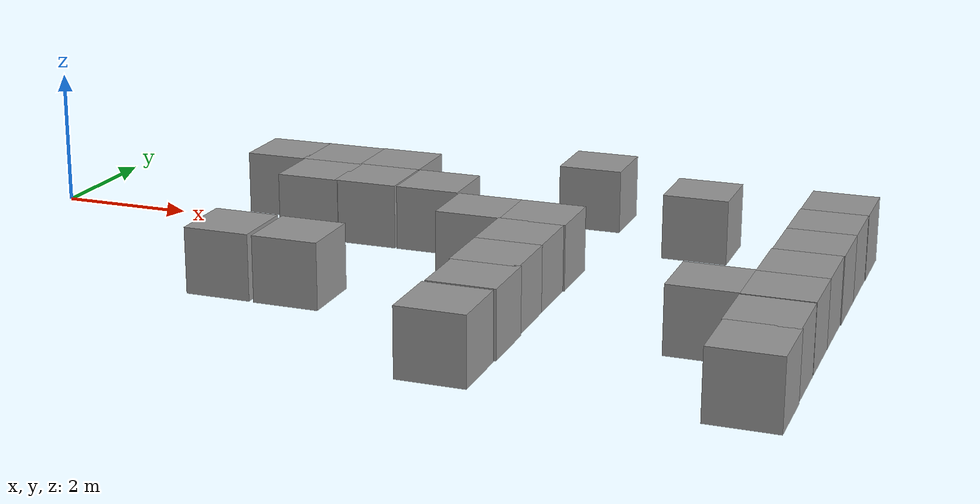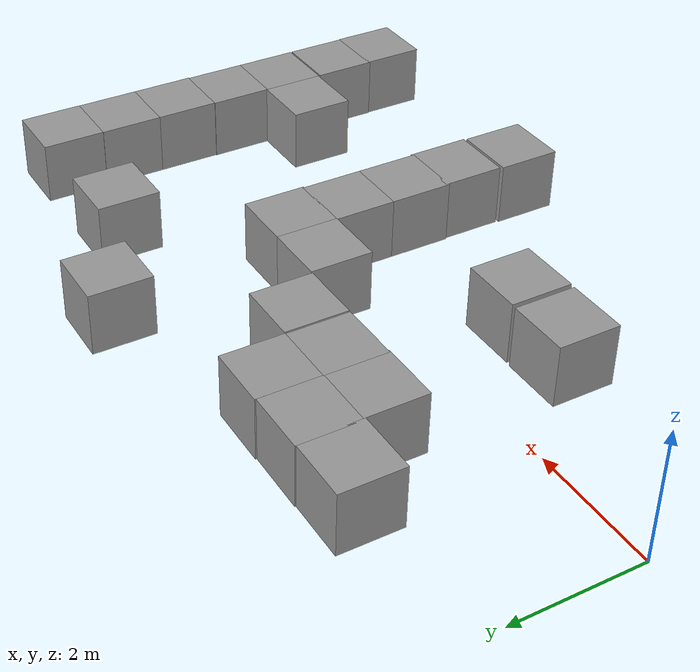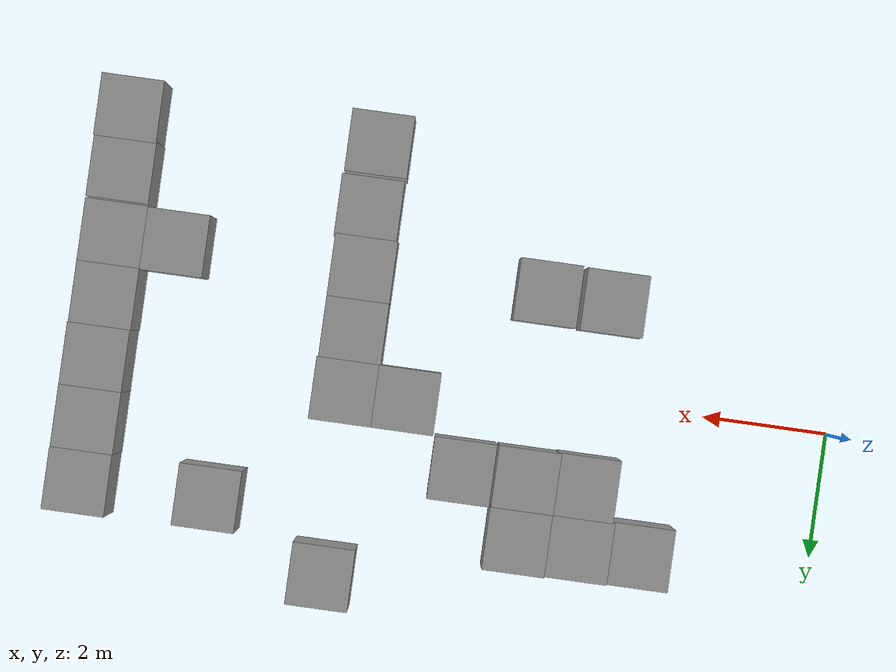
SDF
<sdf version="1.7">
 <model name="maze2.1">
  <link name="link_15">
   <inertial>
    <mass>1</mass>
    <inertia>
     <ixx>0.166667</ixx>
     <ixy>0</ixy>
     <ixz>0</ixz>
     <iyy>0.166667</iyy>
     <iyz>0</iyz>
     <izz>0.166667</izz>
    </inertia>
   </inertial>
   <pose>4.70076 2.36358 0 0 -0 0</pose>
   <visual name="visual">
    <geometry><box><size>1 1 1</size></box></geometry>
    <material>
     <lighting>1</lighting>
     <script><uri>file://media/materials/scripts/gazebo.material</uri><name>Gazebo/Grey</name></script>
     <shader type="pixel"/>
    </material>
   </visual>
   <collision name="collision">
    <geometry><box><size>1 1 1</size></box></geometry>
    <surface>
     <friction>
      <ode><mu>1</mu><mu2>1</mu2><fdir1>0 0 0</fdir1><slip1>0</slip1><slip2>0</slip2></ode>
      <torsional>
       <coefficient>1</coefficient>
       <patch_radius>0</patch_radius>
       <surface_radius>0</surface_radius>
       <use_patch_radius>1</use_patch_radius>
       <ode><slip>0</slip></ode>
      </torsional>
     </friction>
     <bounce><restitution_coefficient>0</restitution_coefficient><threshold>1e+06</threshold></bounce>
     <contact>
      <collide_without_contact>0</collide_without_contact>
      <collide_without_contact_bitmask>1</collide_without_contact_bitmask>
      <collide_bitmask>1</collide_bitmask>
      <ode>
       <soft_cfm>0</soft_cfm>
       <soft_erp>0.2</soft_erp>
       <kp>1e+13</kp>
       <kd>1</kd>
       <max_vel>0.01</max_vel>
       <min_depth>0</min_depth>
      </ode>
      <bullet>
       <split_impulse>1</split_impulse>
       <split_impulse_penetration_threshold>-0.01</split_impulse_penetration_threshold>
       <soft_cfm>0</soft_cfm>
       <soft_erp>0.2</soft_erp>
       <kp>1e+13</kp>
       <kd>1</kd>
      </bullet>
     </contact>
    </surface>
   </collision>
  </link>
  <link name="link_1_clone_133">
   <inertial>
    <mass>1</mass>
    <inertia>
     <ixx>0.166667</ixx>
     <ixy>0</ixy>
     <ixz>0</ixz>
     <iyy>0.166667</iyy>
     <iyz>0</iyz>
     <izz>0.166667</izz>
    </inertia>
   </inertial>
   <pose>7.75382 0.374651 0 0 -0 0</pose>
   <visual name="visual">
    <geometry><box><size>1 1 1</size></box></geometry>
    <material>
     <lighting>1</lighting>
     <script><uri>file://media/materials/scripts/gazebo.material</uri><name>Gazebo/Grey</name></script>
     <shader type="pixel"><normal_map>__default__</normal_map></shader>
     <ambient>0.3 0.3 0.3 1</ambient>
     <diffuse>0.7 0.7 0.7 1</diffuse>
     <specular>0.01 0.01 0.01 1</specular>
     <emissive>0 0 0 1</emissive>
    </material>
   </visual>
   <collision name="collision">
    <geometry><box><size>1 1 1</size></box></geometry>
    <surface>
     <friction>
      <ode><mu>1</mu><mu2>1</mu2><fdir1>0 0 0</fdir1><slip1>0</slip1><slip2>0</slip2></ode>
      <torsional>
       <coefficient>1</coefficient>
       <patch_radius>0</patch_radius>
       <surface_radius>0</surface_radius>
       <use_patch_radius>1</use_patch_radius>
       <ode><slip>0</slip></ode>
      </torsional>
     </friction>
     <bounce><restitution_coefficient>0</restitution_coefficient><threshold>1e+06</threshold></bounce>
     <contact>
      <collide_without_contact>0</collide_without_contact>
      <collide_without_contact_bitmask>1</collide_without_contact_bitmask>
      <collide_bitmask>1</collide_bitmask>
      <ode>
       <soft_cfm>0</soft_cfm>
       <soft_erp>0.2</soft_erp>
       <kp>1e+13</kp>
       <kd>1</kd>
       <max_vel>0.01</max_vel>
       <min_depth>0</min_depth>
      </ode>
      <bullet>
       <split_impulse>1</split_impulse>
       <split_impulse_penetration_threshold>-0.01</split_impulse_penetration_threshold>
       <soft_cfm>0</soft_cfm>
       <soft_erp>0.2</soft_erp>
       <kp>1e+13</kp>
       <kd>1</kd>
      </bullet>
     </contact>
    </surface>
   </collision>
  </link>
  <link name="link_1_clone_134">
   <inertial>
    <mass>1</mass>
    <inertia>
     <ixx>0.166667</ixx>
     <ixy>0</ixy>
     <ixz>0</ixz>
     <iyy>0.166667</iyy>
     <iyz>0</iyz>
     <izz>0.166667</izz>
    </inertia>
   </inertial>
   <pose>6.75382 0.374651 0 0 -0 0</pose>
   <visual name="visual">
    <geometry><box><size>1 1 1</size></box></geometry>
    <material>
     <lighting>1</lighting>
     <script><uri>file://media/materials/scripts/gazebo.material</uri><name>Gazebo/Grey</name></script>
     <shader type="pixel"><normal_map>__default__</normal_map></shader>
     <ambient>0.3 0.3 0.3 1</ambient>
     <diffuse>0.7 0.7 0.7 1</diffuse>
     <specular>0.01 0.01 0.01 1</specular>
     <emissive>0 0 0 1</emissive>
    </material>
   </visual>
   <collision name="collision">
    <geometry><box><size>1 1 1</size></box></geometry>
    <surface>
     <friction>
      <ode><mu>1</mu><mu2>1</mu2><fdir1>0 0 0</fdir1><slip1>0</slip1><slip2>0</slip2></ode>
      <torsional>
       <coefficient>1</coefficient>
       <patch_radius>0</patch_radius>
       <surface_radius>0</surface_radius>
       <use_patch_radius>1</use_patch_radius>
       <ode><slip>0</slip></ode>
      </torsional>
     </friction>
     <bounce><restitution_coefficient>0</restitution_coefficient><threshold>1e+06</threshold></bounce>
     <contact>
      <collide_without_contact>0</collide_without_contact>
      <collide_without_contact_bitmask>1</collide_without_contact_bitmask>
      <collide_bitmask>1</collide_bitmask>
      <ode>
       <soft_cfm>0</soft_cfm>
       <soft_erp>0.2</soft_erp>
       <kp>1e+13</kp>
       <kd>1</kd>
       <max_vel>0.01</max_vel>
       <min_depth>0</min_depth>
      </ode>
      <bullet>
       <split_impulse>1</split_impulse>
       <split_impulse_penetration_threshold>-0.01</split_impulse_penetration_threshold>
       <soft_cfm>0</soft_cfm>
       <soft_erp>0.2</soft_erp>
       <kp>1e+13</kp>
       <kd>1</kd>
      </bullet>
     </contact>
    </surface>
   </collision>
  </link>
  <link name="link_1_clone_135">
   <inertial>
    <mass>1</mass>
    <inertia>
     <ixx>0.166667</ixx>
     <ixy>0</ixy>
     <ixz>0</ixz>
     <iyy>0.166667</iyy>
     <iyz>0</iyz>
     <izz>0.166667</izz>
    </inertia>
   </inertial>
   <pose>5.72206 1.3729 0 0 -0 0</pose>
   <visual name="visual">
    <geometry><box><size>1 1 1</size></box></geometry>
    <material>
     <lighting>1</lighting>
     <script><uri>file://media/materials/scripts/gazebo.material</uri><name>Gazebo/Grey</name></script>
     <shader type="pixel"><normal_map>__default__</normal_map></shader>
     <ambient>0.3 0.3 0.3 1</ambient>
     <diffuse>0.7 0.7 0.7 1</diffuse>
     <specular>0.01 0.01 0.01 1</specular>
     <emissive>0 0 0 1</emissive>
    </material>
   </visual>
   <collision name="collision">
    <geometry><box><size>1 1 1</size></box></geometry>
    <surface>
     <friction>
      <ode><mu>1</mu><mu2>1</mu2><fdir1>0 0 0</fdir1><slip1>0</slip1><slip2>0</slip2></ode>
      <torsional>
       <coefficient>1</coefficient>
       <patch_radius>0</patch_radius>
       <surface_radius>0</surface_radius>
       <use_patch_radius>1</use_patch_radius>
       <ode><slip>0</slip></ode>
      </torsional>
     </friction>
     <bounce><restitution_coefficient>0</restitution_coefficient><threshold>1e+06</threshold></bounce>
     <contact>
      <collide_without_contact>0</collide_without_contact>
      <collide_without_contact_bitmask>1</collide_without_contact_bitmask>
      <collide_bitmask>1</collide_bitmask>
      <ode>
       <soft_cfm>0</soft_cfm>
       <soft_erp>0.2</soft_erp>
       <kp>1e+13</kp>
       <kd>1</kd>
       <max_vel>0.01</max_vel>
       <min_depth>0</min_depth>
      </ode>
      <bullet>
       <split_impulse>1</split_impulse>
       <split_impulse_penetration_threshold>-0.01</split_impulse_penetration_threshold>
       <soft_cfm>0</soft_cfm>
       <soft_erp>0.2</soft_erp>
       <kp>1e+13</kp>
       <kd>1</kd>
      </bullet>
     </contact>
    </surface>
   </collision>
  </link>
  <link name="link_1_clone_136">
   <inertial>
    <mass>1</mass>
    <inertia>
     <ixx>0.166667</ixx>
     <ixy>0</ixy>
     <ixz>0</ixz>
     <iyy>0.166667</iyy>
     <iyz>0</iyz>
     <izz>0.166667</izz>
    </inertia>
   </inertial>
   <pose>4.69046 1.37294 0 0 -0 0</pose>
   <visual name="visual">
    <geometry><box><size>1 1 1</size></box></geometry>
    <material>
     <lighting>1</lighting>
     <script><uri>file://media/materials/scripts/gazebo.material</uri><name>Gazebo/Grey</name></script>
     <shader type="pixel"><normal_map>__default__</normal_map></shader>
     <ambient>0.3 0.3 0.3 1</ambient>
     <diffuse>0.7 0.7 0.7 1</diffuse>
     <specular>0.01 0.01 0.01 1</specular>
     <emissive>0 0 0 1</emissive>
    </material>
   </visual>
   <collision name="collision">
    <geometry><box><size>1 1 1</size></box></geometry>
    <surface>
     <friction>
      <ode><mu>1</mu><mu2>1</mu2><fdir1>0 0 0</fdir1><slip1>0</slip1><slip2>0</slip2></ode>
      <torsional>
       <coefficient>1</coefficient>
       <patch_radius>0</patch_radius>
       <surface_radius>0</surface_radius>
       <use_patch_radius>1</use_patch_radius>
       <ode><slip>0</slip></ode>
      </torsional>
     </friction>
     <bounce><restitution_coefficient>0</restitution_coefficient><threshold>1e+06</threshold></bounce>
     <contact>
      <collide_without_contact>0</collide_without_contact>
      <collide_without_contact_bitmask>1</collide_without_contact_bitmask>
      <collide_bitmask>1</collide_bitmask>
      <ode>
       <soft_cfm>0</soft_cfm>
       <soft_erp>0.2</soft_erp>
       <kp>1e+13</kp>
       <kd>1</kd>
       <max_vel>0.01</max_vel>
       <min_depth>0</min_depth>
      </ode>
      <bullet>
       <split_impulse>1</split_impulse>
       <split_impulse_penetration_threshold>-0.01</split_impulse_penetration_threshold>
       <soft_cfm>0</soft_cfm>
       <soft_erp>0.2</soft_erp>
       <kp>1e+13</kp>
       <kd>1</kd>
      </bullet>
     </contact>
    </surface>
   </collision>
  </link>
  <link name="link_1_clone_139">
   <inertial>
    <mass>1</mass>
    <inertia>
     <ixx>0.166667</ixx>
     <ixy>0</ixy>
     <ixz>0</ixz>
     <iyy>0.166667</iyy>
     <iyz>0</iyz>
     <izz>0.166667</izz>
    </inertia>
   </inertial>
   <pose>3.73221 1.35884 0 0 -0 0</pose>
   <visual name="visual">
    <geometry><box><size>1 1 1</size></box></geometry>
    <material>
     <lighting>1</lighting>
     <script><uri>file://media/materials/scripts/gazebo.material</uri><name>Gazebo/Grey</name></script>
     <shader type="pixel"><normal_map>__default__</normal_map></shader>
     <ambient>0.3 0.3 0.3 1</ambient>
     <diffuse>0.7 0.7 0.7 1</diffuse>
     <specular>0.01 0.01 0.01 1</specular>
     <emissive>0 0 0 1</emissive>
    </material>
   </visual>
   <collision name="collision">
    <geometry><box><size>1 1 1</size></box></geometry>
    <surface>
     <friction>
      <ode><mu>1</mu><mu2>1</mu2><fdir1>0 0 0</fdir1><slip1>0</slip1><slip2>0</slip2></ode>
      <torsional>
       <coefficient>1</coefficient>
       <patch_radius>0</patch_radius>
       <surface_radius>0</surface_radius>
       <use_patch_radius>1</use_patch_radius>
       <ode><slip>0</slip></ode>
      </torsional>
     </friction>
     <bounce><restitution_coefficient>0</restitution_coefficient><threshold>1e+06</threshold></bounce>
     <contact>
      <collide_without_contact>0</collide_without_contact>
      <collide_without_contact_bitmask>1</collide_without_contact_bitmask>
      <collide_bitmask>1</collide_bitmask>
      <ode>
       <soft_cfm>0</soft_cfm>
       <soft_erp>0.2</soft_erp>
       <kp>1e+13</kp>
       <kd>1</kd>
       <max_vel>0.01</max_vel>
       <min_depth>0</min_depth>
      </ode>
      <bullet>
       <split_impulse>1</split_impulse>
       <split_impulse_penetration_threshold>-0.01</split_impulse_penetration_threshold>
       <soft_cfm>0</soft_cfm>
       <soft_erp>0.2</soft_erp>
       <kp>1e+13</kp>
       <kd>1</kd>
      </bullet>
     </contact>
    </surface>
   </collision>
  </link>
  <link name="link_1_clone_140">
   <inertial>
    <mass>1</mass>
    <inertia>
     <ixx>0.166667</ixx>
     <ixy>0</ixy>
     <ixz>0</ixz>
     <iyy>0.166667</iyy>
     <iyz>0</iyz>
     <izz>0.166667</izz>
    </inertia>
   </inertial>
   <pose>3.7007 2.3431 0 0 -0 0</pose>
   <visual name="visual">
    <geometry><box><size>1 1 1</size></box></geometry>
    <material>
     <lighting>1</lighting>
     <script><uri>file://media/materials/scripts/gazebo.material</uri><name>Gazebo/Grey</name></script>
     <shader type="pixel"><normal_map>__default__</normal_map></shader>
     <ambient>0.3 0.3 0.3 1</ambient>
     <diffuse>0.7 0.7 0.7 1</diffuse>
     <specular>0.01 0.01 0.01 1</specular>
     <emissive>0 0 0 1</emissive>
    </material>
   </visual>
   <collision name="collision">
    <geometry><box><size>1 1 1</size></box></geometry>
    <surface>
     <friction>
      <ode><mu>1</mu><mu2>1</mu2><fdir1>0 0 0</fdir1><slip1>0</slip1><slip2>0</slip2></ode>
      <torsional>
       <coefficient>1</coefficient>
       <patch_radius>0</patch_radius>
       <surface_radius>0</surface_radius>
       <use_patch_radius>1</use_patch_radius>
       <ode><slip>0</slip></ode>
      </torsional>
     </friction>
     <bounce><restitution_coefficient>0</restitution_coefficient><threshold>1e+06</threshold></bounce>
     <contact>
      <collide_without_contact>0</collide_without_contact>
      <collide_without_contact_bitmask>1</collide_without_contact_bitmask>
      <collide_bitmask>1</collide_bitmask>
      <ode>
       <soft_cfm>0</soft_cfm>
       <soft_erp>0.2</soft_erp>
       <kp>1e+13</kp>
       <kd>1</kd>
       <max_vel>0.01</max_vel>
       <min_depth>0</min_depth>
      </ode>
      <bullet>
       <split_impulse>1</split_impulse>
       <split_impulse_penetration_threshold>-0.01</split_impulse_penetration_threshold>
       <soft_cfm>0</soft_cfm>
       <soft_erp>0.2</soft_erp>
       <kp>1e+13</kp>
       <kd>1</kd>
      </bullet>
     </contact>
    </surface>
   </collision>
  </link>
  <link name="link_1_clone_141">
   <inertial>
    <mass>1</mass>
    <inertia>
     <ixx>0.166667</ixx>
     <ixy>0</ixy>
     <ixz>0</ixz>
     <iyy>0.166667</iyy>
     <iyz>0</iyz>
     <izz>0.166667</izz>
    </inertia>
   </inertial>
   <pose>2.73218 2.32736 0 0 -0 0</pose>
   <visual name="visual">
    <geometry><box><size>1 1 1</size></box></geometry>
    <material>
     <lighting>1</lighting>
     <script><uri>file://media/materials/scripts/gazebo.material</uri><name>Gazebo/Grey</name></script>
     <shader type="pixel"><normal_map>__default__</normal_map></shader>
     <ambient>0.3 0.3 0.3 1</ambient>
     <diffuse>0.7 0.7 0.7 1</diffuse>
     <specular>0.01 0.01 0.01 1</specular>
     <emissive>0 0 0 1</emissive>
    </material>
   </visual>
   <collision name="collision">
    <geometry><box><size>1 1 1</size></box></geometry>
    <surface>
     <friction>
      <ode><mu>1</mu><mu2>1</mu2><fdir1>0 0 0</fdir1><slip1>0</slip1><slip2>0</slip2></ode>
      <torsional>
       <coefficient>1</coefficient>
       <patch_radius>0</patch_radius>
       <surface_radius>0</surface_radius>
       <use_patch_radius>1</use_patch_radius>
       <ode><slip>0</slip></ode>
      </torsional>
     </friction>
     <bounce><restitution_coefficient>0</restitution_coefficient><threshold>1e+06</threshold></bounce>
     <contact>
      <collide_without_contact>0</collide_without_contact>
      <collide_without_contact_bitmask>1</collide_without_contact_bitmask>
      <collide_bitmask>1</collide_bitmask>
      <ode>
       <soft_cfm>0</soft_cfm>
       <soft_erp>0.2</soft_erp>
       <kp>1e+13</kp>
       <kd>1</kd>
       <max_vel>0.01</max_vel>
       <min_depth>0</min_depth>
      </ode>
      <bullet>
       <split_impulse>1</split_impulse>
       <split_impulse_penetration_threshold>-0.01</split_impulse_penetration_threshold>
       <soft_cfm>0</soft_cfm>
       <soft_erp>0.2</soft_erp>
       <kp>1e+13</kp>
       <kd>1</kd>
      </bullet>
     </contact>
    </surface>
   </collision>
  </link>
  <link name="link_1_clone_144">
   <inertial>
    <mass>1</mass>
    <inertia>
     <ixx>0.166667</ixx>
     <ixy>0</ixy>
     <ixz>0</ixz>
     <iyy>0.166667</iyy>
     <iyz>0</iyz>
     <izz>0.166667</izz>
    </inertia>
   </inertial>
   <pose>7.73024 -0.602599 0 0 -0 0</pose>
   <visual name="visual">
    <geometry><box><size>1 1 1</size></box></geometry>
    <material>
     <lighting>1</lighting>
     <script><uri>file://media/materials/scripts/gazebo.material</uri><name>Gazebo/Grey</name></script>
     <shader type="pixel"><normal_map>__default__</normal_map></shader>
     <ambient>0.3 0.3 0.3 1</ambient>
     <diffuse>0.7 0.7 0.7 1</diffuse>
     <specular>0.01 0.01 0.01 1</specular>
     <emissive>0 0 0 1</emissive>
    </material>
   </visual>
   <collision name="collision">
    <geometry><box><size>1 1 1</size></box></geometry>
    <surface>
     <friction>
      <ode><mu>1</mu><mu2>1</mu2><fdir1>0 0 0</fdir1><slip1>0</slip1><slip2>0</slip2></ode>
      <torsional>
       <coefficient>1</coefficient>
       <patch_radius>0</patch_radius>
       <surface_radius>0</surface_radius>
       <use_patch_radius>1</use_patch_radius>
       <ode><slip>0</slip></ode>
      </torsional>
     </friction>
     <bounce><restitution_coefficient>0</restitution_coefficient><threshold>1e+06</threshold></bounce>
     <contact>
      <collide_without_contact>0</collide_without_contact>
      <collide_without_contact_bitmask>1</collide_without_contact_bitmask>
      <collide_bitmask>1</collide_bitmask>
      <ode>
       <soft_cfm>0</soft_cfm>
       <soft_erp>0.2</soft_erp>
       <kp>1e+13</kp>
       <kd>1</kd>
       <max_vel>0.01</max_vel>
       <min_depth>0</min_depth>
      </ode>
      <bullet>
       <split_impulse>1</split_impulse>
       <split_impulse_penetration_threshold>-0.01</split_impulse_penetration_threshold>
       <soft_cfm>0</soft_cfm>
       <soft_erp>0.2</soft_erp>
       <kp>1e+13</kp>
       <kd>1</kd>
      </bullet>
     </contact>
    </surface>
   </collision>
  </link>
  <link name="link_1_clone_145">
   <inertial>
    <mass>1</mass>
    <inertia>
     <ixx>0.166667</ixx>
     <ixy>0</ixy>
     <ixz>0</ixz>
     <iyy>0.166667</iyy>
     <iyz>0</iyz>
     <izz>0.166667</izz>
    </inertia>
   </inertial>
   <pose>7.73013 -1.60265 0 0 -0 0</pose>
   <visual name="visual">
    <geometry><box><size>1 1 1</size></box></geometry>
    <material>
     <lighting>1</lighting>
     <script><uri>file://media/materials/scripts/gazebo.material</uri><name>Gazebo/Grey</name></script>
     <shader type="pixel"><normal_map>__default__</normal_map></shader>
     <ambient>0.3 0.3 0.3 1</ambient>
     <diffuse>0.7 0.7 0.7 1</diffuse>
     <specular>0.01 0.01 0.01 1</specular>
     <emissive>0 0 0 1</emissive>
    </material>
   </visual>
   <collision name="collision">
    <geometry><box><size>1 1 1</size></box></geometry>
    <surface>
     <friction>
      <ode><mu>1</mu><mu2>1</mu2><fdir1>0 0 0</fdir1><slip1>0</slip1><slip2>0</slip2></ode>
      <torsional>
       <coefficient>1</coefficient>
       <patch_radius>0</patch_radius>
       <surface_radius>0</surface_radius>
       <use_patch_radius>1</use_patch_radius>
       <ode><slip>0</slip></ode>
      </torsional>
     </friction>
     <bounce><restitution_coefficient>0</restitution_coefficient><threshold>1e+06</threshold></bounce>
     <contact>
      <collide_without_contact>0</collide_without_contact>
      <collide_without_contact_bitmask>1</collide_without_contact_bitmask>
      <collide_bitmask>1</collide_bitmask>
      <ode>
       <soft_cfm>0</soft_cfm>
       <soft_erp>0.2</soft_erp>
       <kp>1e+13</kp>
       <kd>1</kd>
       <max_vel>0.01</max_vel>
       <min_depth>0</min_depth>
      </ode>
      <bullet>
       <split_impulse>1</split_impulse>
       <split_impulse_penetration_threshold>-0.01</split_impulse_penetration_threshold>
       <soft_cfm>0</soft_cfm>
       <soft_erp>0.2</soft_erp>
       <kp>1e+13</kp>
       <kd>1</kd>
      </bullet>
     </contact>
    </surface>
   </collision>
  </link>
  <link name="link_1_clone_146">
   <inertial>
    <mass>1</mass>
    <inertia>
     <ixx>0.166667</ixx>
     <ixy>0</ixy>
     <ixz>0</ixz>
     <iyy>0.166667</iyy>
     <iyz>0</iyz>
     <izz>0.166667</izz>
    </inertia>
   </inertial>
   <pose>7.75218 -2.55822 0 0 -0 0</pose>
   <visual name="visual">
    <geometry><box><size>1 1 1</size></box></geometry>
    <material>
     <lighting>1</lighting>
     <script><uri>file://media/materials/scripts/gazebo.material</uri><name>Gazebo/Grey</name></script>
     <shader type="pixel"><normal_map>__default__</normal_map></shader>
     <ambient>0.3 0.3 0.3 1</ambient>
     <diffuse>0.7 0.7 0.7 1</diffuse>
     <specular>0.01 0.01 0.01 1</specular>
     <emissive>0 0 0 1</emissive>
    </material>
   </visual>
   <collision name="collision">
    <geometry><box><size>1 1 1</size></box></geometry>
    <surface>
     <friction>
      <ode><mu>1</mu><mu2>1</mu2><fdir1>0 0 0</fdir1><slip1>0</slip1><slip2>0</slip2></ode>
      <torsional>
       <coefficient>1</coefficient>
       <patch_radius>0</patch_radius>
       <surface_radius>0</surface_radius>
       <use_patch_radius>1</use_patch_radius>
       <ode><slip>0</slip></ode>
      </torsional>
     </friction>
     <bounce><restitution_coefficient>0</restitution_coefficient><threshold>1e+06</threshold></bounce>
     <contact>
      <collide_without_contact>0</collide_without_contact>
      <collide_without_contact_bitmask>1</collide_without_contact_bitmask>
      <collide_bitmask>1</collide_bitmask>
      <ode>
       <soft_cfm>0</soft_cfm>
       <soft_erp>0.2</soft_erp>
       <kp>1e+13</kp>
       <kd>1</kd>
       <max_vel>0.01</max_vel>
       <min_depth>0</min_depth>
      </ode>
      <bullet>
       <split_impulse>1</split_impulse>
       <split_impulse_penetration_threshold>-0.01</split_impulse_penetration_threshold>
       <soft_cfm>0</soft_cfm>
       <soft_erp>0.2</soft_erp>
       <kp>1e+13</kp>
       <kd>1</kd>
      </bullet>
     </contact>
    </surface>
   </collision>
  </link>
  <link name="link_1_clone_147">
   <inertial>
    <mass>1</mass>
    <inertia>
     <ixx>0.166667</ixx>
     <ixy>0</ixy>
     <ixz>0</ixz>
     <iyy>0.166667</iyy>
     <iyz>0</iyz>
     <izz>0.166667</izz>
    </inertia>
   </inertial>
   <pose>7.72992 -3.6026 0 0 -0 0</pose>
   <visual name="visual">
    <geometry><box><size>1 1 1</size></box></geometry>
    <material>
     <lighting>1</lighting>
     <script><uri>file://media/materials/scripts/gazebo.material</uri><name>Gazebo/Grey</name></script>
     <shader type="pixel"><normal_map>__default__</normal_map></shader>
     <ambient>0.3 0.3 0.3 1</ambient>
     <diffuse>0.7 0.7 0.7 1</diffuse>
     <specular>0.01 0.01 0.01 1</specular>
     <emissive>0 0 0 1</emissive>
    </material>
   </visual>
   <collision name="collision">
    <geometry><box><size>1 1 1</size></box></geometry>
    <surface>
     <friction>
      <ode><mu>1</mu><mu2>1</mu2><fdir1>0 0 0</fdir1><slip1>0</slip1><slip2>0</slip2></ode>
      <torsional>
       <coefficient>1</coefficient>
       <patch_radius>0</patch_radius>
       <surface_radius>0</surface_radius>
       <use_patch_radius>1</use_patch_radius>
       <ode><slip>0</slip></ode>
      </torsional>
     </friction>
     <bounce><restitution_coefficient>0</restitution_coefficient><threshold>1e+06</threshold></bounce>
     <contact>
      <collide_without_contact>0</collide_without_contact>
      <collide_without_contact_bitmask>1</collide_without_contact_bitmask>
      <collide_bitmask>1</collide_bitmask>
      <ode>
       <soft_cfm>0</soft_cfm>
       <soft_erp>0.2</soft_erp>
       <kp>1e+13</kp>
       <kd>1</kd>
       <max_vel>0.01</max_vel>
       <min_depth>0</min_depth>
      </ode>
      <bullet>
       <split_impulse>1</split_impulse>
       <split_impulse_penetration_threshold>-0.01</split_impulse_penetration_threshold>
       <soft_cfm>0</soft_cfm>
       <soft_erp>0.2</soft_erp>
       <kp>1e+13</kp>
       <kd>1</kd>
      </bullet>
     </contact>
    </surface>
   </collision>
  </link>
  <link name="link_1_clone_148">
   <inertial>
    <mass>1</mass>
    <inertia>
     <ixx>0.166667</ixx>
     <ixy>0</ixy>
     <ixz>0</ixz>
     <iyy>0.166667</iyy>
     <iyz>0</iyz>
     <izz>0.166667</izz>
    </inertia>
   </inertial>
   <pose>10.7323 -1.60015 0 0 -0 0</pose>
   <visual name="visual">
    <geometry><box><size>1 1 1</size></box></geometry>
    <material>
     <lighting>1</lighting>
     <script><uri>file://media/materials/scripts/gazebo.material</uri><name>Gazebo/Grey</name></script>
     <shader type="pixel"><normal_map>__default__</normal_map></shader>
     <ambient>0.3 0.3 0.3 1</ambient>
     <diffuse>0.7 0.7 0.7 1</diffuse>
     <specular>0.01 0.01 0.01 1</specular>
     <emissive>0 0 0 1</emissive>
    </material>
   </visual>
   <collision name="collision">
    <geometry><box><size>1 1 1</size></box></geometry>
    <surface>
     <friction>
      <ode><mu>1</mu><mu2>1</mu2><fdir1>0 0 0</fdir1><slip1>0</slip1><slip2>0</slip2></ode>
      <torsional>
       <coefficient>1</coefficient>
       <patch_radius>0</patch_radius>
       <surface_radius>0</surface_radius>
       <use_patch_radius>1</use_patch_radius>
       <ode><slip>0</slip></ode>
      </torsional>
     </friction>
     <bounce><restitution_coefficient>0</restitution_coefficient><threshold>1e+06</threshold></bounce>
     <contact>
      <collide_without_contact>0</collide_without_contact>
      <collide_without_contact_bitmask>1</collide_without_contact_bitmask>
      <collide_bitmask>1</collide_bitmask>
      <ode>
       <soft_cfm>0</soft_cfm>
       <soft_erp>0.2</soft_erp>
       <kp>1e+13</kp>
       <kd>1</kd>
       <max_vel>0.01</max_vel>
       <min_depth>0</min_depth>
      </ode>
      <bullet>
       <split_impulse>1</split_impulse>
       <split_impulse_penetration_threshold>-0.01</split_impulse_penetration_threshold>
       <soft_cfm>0</soft_cfm>
       <soft_erp>0.2</soft_erp>
       <kp>1e+13</kp>
       <kd>1</kd>
      </bullet>
     </contact>
    </surface>
   </collision>
  </link>
  <link name="link_1_clone_166">
   <inertial>
    <mass>1</mass>
    <inertia>
     <ixx>0.166667</ixx>
     <ixy>0</ixy>
     <ixz>0</ixz>
     <iyy>0.166667</iyy>
     <iyz>0</iyz>
     <izz>0.166667</izz>
    </inertia>
   </inertial>
   <pose>4.75382 -1.62535 0 0 -0 0</pose>
   <visual name="visual">
    <geometry><box><size>1 1 1</size></box></geometry>
    <material>
     <lighting>1</lighting>
     <script><uri>file://media/materials/scripts/gazebo.material</uri><name>Gazebo/Grey</name></script>
     <shader type="pixel"><normal_map>__default__</normal_map></shader>
     <ambient>0.3 0.3 0.3 1</ambient>
     <diffuse>0.7 0.7 0.7 1</diffuse>
     <specular>0.01 0.01 0.01 1</specular>
     <emissive>0 0 0 1</emissive>
    </material>
   </visual>
   <collision name="collision">
    <geometry><box><size>1 1 1</size></box></geometry>
    <surface>
     <friction>
      <ode><mu>1</mu><mu2>1</mu2><fdir1>0 0 0</fdir1><slip1>0</slip1><slip2>0</slip2></ode>
      <torsional>
       <coefficient>1</coefficient>
       <patch_radius>0</patch_radius>
       <surface_radius>0</surface_radius>
       <use_patch_radius>1</use_patch_radius>
       <ode><slip>0</slip></ode>
      </torsional>
     </friction>
     <bounce><restitution_coefficient>0</restitution_coefficient><threshold>1e+06</threshold></bounce>
     <contact>
      <collide_without_contact>0</collide_without_contact>
      <collide_without_contact_bitmask>1</collide_without_contact_bitmask>
      <collide_bitmask>1</collide_bitmask>
      <ode>
       <soft_cfm>0</soft_cfm>
       <soft_erp>0.2</soft_erp>
       <kp>1e+13</kp>
       <kd>1</kd>
       <max_vel>0.01</max_vel>
       <min_depth>0</min_depth>
      </ode>
      <bullet>
       <split_impulse>1</split_impulse>
       <split_impulse_penetration_threshold>-0.01</split_impulse_penetration_threshold>
       <soft_cfm>0</soft_cfm>
       <soft_erp>0.2</soft_erp>
       <kp>1e+13</kp>
       <kd>1</kd>
      </bullet>
     </contact>
    </surface>
   </collision>
  </link>
  <link name="link_1_clone_168">
   <inertial>
    <mass>1</mass>
    <inertia>
     <ixx>0.166667</ixx>
     <ixy>0</ixy>
     <ixz>0</ixz>
     <iyy>0.166667</iyy>
     <iyz>0</iyz>
     <izz>0.166667</izz>
    </inertia>
   </inertial>
   <pose>3.67817 -1.61156 0 0 -0 0</pose>
   <visual name="visual">
    <geometry><box><size>1 1 1</size></box></geometry>
    <material>
     <lighting>1</lighting>
     <script><uri>file://media/materials/scripts/gazebo.material</uri><name>Gazebo/Grey</name></script>
     <shader type="pixel"><normal_map>__default__</normal_map></shader>
     <ambient>0.3 0.3 0.3 1</ambient>
     <diffuse>0.7 0.7 0.7 1</diffuse>
     <specular>0.01 0.01 0.01 1</specular>
     <emissive>0 0 0 1</emissive>
    </material>
   </visual>
   <collision name="collision">
    <geometry><box><size>1 1 1</size></box></geometry>
    <surface>
     <friction>
      <ode><mu>1</mu><mu2>1</mu2><fdir1>0 0 0</fdir1><slip1>0</slip1><slip2>0</slip2></ode>
      <torsional>
       <coefficient>1</coefficient>
       <patch_radius>0</patch_radius>
       <surface_radius>0</surface_radius>
       <use_patch_radius>1</use_patch_radius>
       <ode><slip>0</slip></ode>
      </torsional>
     </friction>
     <bounce><restitution_coefficient>0</restitution_coefficient><threshold>1e+06</threshold></bounce>
     <contact>
      <collide_without_contact>0</collide_without_contact>
      <collide_without_contact_bitmask>1</collide_without_contact_bitmask>
      <collide_bitmask>1</collide_bitmask>
      <ode>
       <soft_cfm>0</soft_cfm>
       <soft_erp>0.2</soft_erp>
       <kp>1e+13</kp>
       <kd>1</kd>
       <max_vel>0.01</max_vel>
       <min_depth>0</min_depth>
      </ode>
      <bullet>
       <split_impulse>1</split_impulse>
       <split_impulse_penetration_threshold>-0.01</split_impulse_penetration_threshold>
       <soft_cfm>0</soft_cfm>
       <soft_erp>0.2</soft_erp>
       <kp>1e+13</kp>
       <kd>1</kd>
      </bullet>
     </contact>
    </surface>
   </collision>
  </link>
  <link name="link_1_clone_62">
   <inertial>
    <mass>1</mass>
    <inertia>
     <ixx>0.166667</ixx>
     <ixy>0</ixy>
     <ixz>0</ixz>
     <iyy>0.166667</iyy>
     <iyz>0</iyz>
     <izz>0.166667</izz>
    </inertia>
   </inertial>
   <pose>11.745 -3.61274 0 0 -0 0</pose>
   <visual name="visual">
    <geometry><box><size>1 1 1</size></box></geometry>
    <material>
     <lighting>1</lighting>
     <script><uri>file://media/materials/scripts/gazebo.material</uri><name>Gazebo/Grey</name></script>
     <shader type="pixel"><normal_map>__default__</normal_map></shader>
     <ambient>0.3 0.3 0.3 1</ambient>
     <diffuse>0.7 0.7 0.7 1</diffuse>
     <specular>0.01 0.01 0.01 1</specular>
     <emissive>0 0 0 1</emissive>
    </material>
   </visual>
   <collision name="collision">
    <geometry><box><size>1 1 1</size></box></geometry>
    <surface>
     <friction>
      <ode><mu>1</mu><mu2>1</mu2><fdir1>0 0 0</fdir1><slip1>0</slip1><slip2>0</slip2></ode>
      <torsional>
       <coefficient>1</coefficient>
       <patch_radius>0</patch_radius>
       <surface_radius>0</surface_radius>
       <use_patch_radius>1</use_patch_radius>
       <ode><slip>0</slip></ode>
      </torsional>
     </friction>
     <bounce><restitution_coefficient>0</restitution_coefficient><threshold>1e+06</threshold></bounce>
     <contact>
      <collide_without_contact>0</collide_without_contact>
      <collide_without_contact_bitmask>1</collide_without_contact_bitmask>
      <collide_bitmask>1</collide_bitmask>
      <ode>
       <soft_cfm>0</soft_cfm>
       <soft_erp>0.2</soft_erp>
       <kp>1e+13</kp>
       <kd>1</kd>
       <max_vel>0.01</max_vel>
       <min_depth>0</min_depth>
      </ode>
      <bullet>
       <split_impulse>1</split_impulse>
       <split_impulse_penetration_threshold>-0.01</split_impulse_penetration_threshold>
       <soft_cfm>0</soft_cfm>
       <soft_erp>0.2</soft_erp>
       <kp>1e+13</kp>
       <kd>1</kd>
      </bullet>
     </contact>
    </surface>
   </collision>
  </link>
  <link name="link_1_clone_63">
   <inertial>
    <mass>1</mass>
    <inertia>
     <ixx>0.166667</ixx>
     <ixy>0</ixy>
     <ixz>0</ixz>
     <iyy>0.166667</iyy>
     <iyz>0</iyz>
     <izz>0.166667</izz>
    </inertia>
   </inertial>
   <pose>11.7326 -2.63796 0 0 -0 0</pose>
   <visual name="visual">
    <geometry><box><size>1 1 1</size></box></geometry>
    <material>
     <lighting>1</lighting>
     <script><uri>file://media/materials/scripts/gazebo.material</uri><name>Gazebo/Grey</name></script>
     <shader type="pixel"><normal_map>__default__</normal_map></shader>
     <ambient>0.3 0.3 0.3 1</ambient>
     <diffuse>0.7 0.7 0.7 1</diffuse>
     <specular>0.01 0.01 0.01 1</specular>
     <emissive>0 0 0 1</emissive>
    </material>
   </visual>
   <collision name="collision">
    <geometry><box><size>1 1 1</size></box></geometry>
    <surface>
     <friction>
      <ode><mu>1</mu><mu2>1</mu2><fdir1>0 0 0</fdir1><slip1>0</slip1><slip2>0</slip2></ode>
      <torsional>
       <coefficient>1</coefficient>
       <patch_radius>0</patch_radius>
       <surface_radius>0</surface_radius>
       <use_patch_radius>1</use_patch_radius>
       <ode><slip>0</slip></ode>
      </torsional>
     </friction>
     <bounce><restitution_coefficient>0</restitution_coefficient><threshold>1e+06</threshold></bounce>
     <contact>
      <collide_without_contact>0</collide_without_contact>
      <collide_without_contact_bitmask>1</collide_without_contact_bitmask>
      <collide_bitmask>1</collide_bitmask>
      <ode>
       <soft_cfm>0</soft_cfm>
       <soft_erp>0.2</soft_erp>
       <kp>1e+13</kp>
       <kd>1</kd>
       <max_vel>0.01</max_vel>
       <min_depth>0</min_depth>
      </ode>
      <bullet>
       <split_impulse>1</split_impulse>
       <split_impulse_penetration_threshold>-0.01</split_impulse_penetration_threshold>
       <soft_cfm>0</soft_cfm>
       <soft_erp>0.2</soft_erp>
       <kp>1e+13</kp>
       <kd>1</kd>
      </bullet>
     </contact>
    </surface>
   </collision>
  </link>
  <link name="link_1_clone_64">
   <inertial>
    <mass>1</mass>
    <inertia>
     <ixx>0.166667</ixx>
     <ixy>0</ixy>
     <ixz>0</ixz>
     <iyy>0.166667</iyy>
     <iyz>0</iyz>
     <izz>0.166667</izz>
    </inertia>
   </inertial>
   <pose>11.7322 -1.61274 0 0 -0 0</pose>
   <visual name="visual">
    <geometry><box><size>1 1 1</size></box></geometry>
    <material>
     <lighting>1</lighting>
     <script><uri>file://media/materials/scripts/gazebo.material</uri><name>Gazebo/Grey</name></script>
     <shader type="pixel"><normal_map>__default__</normal_map></shader>
     <ambient>0.3 0.3 0.3 1</ambient>
     <diffuse>0.7 0.7 0.7 1</diffuse>
     <specular>0.01 0.01 0.01 1</specular>
     <emissive>0 0 0 1</emissive>
    </material>
   </visual>
   <collision name="collision">
    <geometry><box><size>1 1 1</size></box></geometry>
    <surface>
     <friction>
      <ode><mu>1</mu><mu2>1</mu2><fdir1>0 0 0</fdir1><slip1>0</slip1><slip2>0</slip2></ode>
      <torsional>
       <coefficient>1</coefficient>
       <patch_radius>0</patch_radius>
       <surface_radius>0</surface_radius>
       <use_patch_radius>1</use_patch_radius>
       <ode><slip>0</slip></ode>
      </torsional>
     </friction>
     <bounce><restitution_coefficient>0</restitution_coefficient><threshold>1e+06</threshold></bounce>
     <contact>
      <collide_without_contact>0</collide_without_contact>
      <collide_without_contact_bitmask>1</collide_without_contact_bitmask>
      <collide_bitmask>1</collide_bitmask>
      <ode>
       <soft_cfm>0</soft_cfm>
       <soft_erp>0.2</soft_erp>
       <kp>1e+13</kp>
       <kd>1</kd>
       <max_vel>0.01</max_vel>
       <min_depth>0</min_depth>
      </ode>
      <bullet>
       <split_impulse>1</split_impulse>
       <split_impulse_penetration_threshold>-0.01</split_impulse_penetration_threshold>
       <soft_cfm>0</soft_cfm>
       <soft_erp>0.2</soft_erp>
       <kp>1e+13</kp>
       <kd>1</kd>
      </bullet>
     </contact>
    </surface>
   </collision>
  </link>
  <link name="link_1_clone_65">
   <inertial>
    <mass>1</mass>
    <inertia>
     <ixx>0.166667</ixx>
     <ixy>0</ixy>
     <ixz>0</ixz>
     <iyy>0.166667</iyy>
     <iyz>0</iyz>
     <izz>0.166667</izz>
    </inertia>
   </inertial>
   <pose>11.7323 -0.625349 0 0 -0 0</pose>
   <visual name="visual">
    <geometry><box><size>1 1 1</size></box></geometry>
    <material>
     <lighting>1</lighting>
     <script><uri>file://media/materials/scripts/gazebo.material</uri><name>Gazebo/Grey</name></script>
     <shader type="pixel"><normal_map>__default__</normal_map></shader>
     <ambient>0.3 0.3 0.3 1</ambient>
     <diffuse>0.7 0.7 0.7 1</diffuse>
     <specular>0.01 0.01 0.01 1</specular>
     <emissive>0 0 0 1</emissive>
    </material>
   </visual>
   <collision name="collision">
    <geometry><box><size>1 1 1</size></box></geometry>
    <surface>
     <friction>
      <ode><mu>1</mu><mu2>1</mu2><fdir1>0 0 0</fdir1><slip1>0</slip1><slip2>0</slip2></ode>
      <torsional>
       <coefficient>1</coefficient>
       <patch_radius>0</patch_radius>
       <surface_radius>0</surface_radius>
       <use_patch_radius>1</use_patch_radius>
       <ode><slip>0</slip></ode>
      </torsional>
     </friction>
     <bounce><restitution_coefficient>0</restitution_coefficient><threshold>1e+06</threshold></bounce>
     <contact>
      <collide_without_contact>0</collide_without_contact>
      <collide_without_contact_bitmask>1</collide_without_contact_bitmask>
      <collide_bitmask>1</collide_bitmask>
      <ode>
       <soft_cfm>0</soft_cfm>
       <soft_erp>0.2</soft_erp>
       <kp>1e+13</kp>
       <kd>1</kd>
       <max_vel>0.01</max_vel>
       <min_depth>0</min_depth>
      </ode>
      <bullet>
       <split_impulse>1</split_impulse>
       <split_impulse_penetration_threshold>-0.01</split_impulse_penetration_threshold>
       <soft_cfm>0</soft_cfm>
       <soft_erp>0.2</soft_erp>
       <kp>1e+13</kp>
       <kd>1</kd>
      </bullet>
     </contact>
    </surface>
   </collision>
  </link>
  <link name="link_1_clone_66">
   <inertial>
    <mass>1</mass>
    <inertia>
     <ixx>0.166667</ixx>
     <ixy>0</ixy>
     <ixz>0</ixz>
     <iyy>0.166667</iyy>
     <iyz>0</iyz>
     <izz>0.166667</izz>
    </inertia>
   </inertial>
   <pose>11.745 0.374651 0 0 -0 0</pose>
   <visual name="visual">
    <geometry><box><size>1 1 1</size></box></geometry>
    <material>
     <lighting>1</lighting>
     <script><uri>file://media/materials/scripts/gazebo.material</uri><name>Gazebo/Grey</name></script>
     <shader type="pixel"><normal_map>__default__</normal_map></shader>
     <ambient>0.3 0.3 0.3 1</ambient>
     <diffuse>0.7 0.7 0.7 1</diffuse>
     <specular>0.01 0.01 0.01 1</specular>
     <emissive>0 0 0 1</emissive>
    </material>
   </visual>
   <collision name="collision">
    <geometry><box><size>1 1 1</size></box></geometry>
    <surface>
     <friction>
      <ode><mu>1</mu><mu2>1</mu2><fdir1>0 0 0</fdir1><slip1>0</slip1><slip2>0</slip2></ode>
      <torsional>
       <coefficient>1</coefficient>
       <patch_radius>0</patch_radius>
       <surface_radius>0</surface_radius>
       <use_patch_radius>1</use_patch_radius>
       <ode><slip>0</slip></ode>
      </torsional>
     </friction>
     <bounce><restitution_coefficient>0</restitution_coefficient><threshold>1e+06</threshold></bounce>
     <contact>
      <collide_without_contact>0</collide_without_contact>
      <collide_without_contact_bitmask>1</collide_without_contact_bitmask>
      <collide_bitmask>1</collide_bitmask>
      <ode>
       <soft_cfm>0</soft_cfm>
       <soft_erp>0.2</soft_erp>
       <kp>1e+13</kp>
       <kd>1</kd>
       <max_vel>0.01</max_vel>
       <min_depth>0</min_depth>
      </ode>
      <bullet>
       <split_impulse>1</split_impulse>
       <split_impulse_penetration_threshold>-0.01</split_impulse_penetration_threshold>
       <soft_cfm>0</soft_cfm>
       <soft_erp>0.2</soft_erp>
       <kp>1e+13</kp>
       <kd>1</kd>
      </bullet>
     </contact>
    </surface>
   </collision>
  </link>
  <link name="link_1_clone_67">
   <inertial>
    <mass>1</mass>
    <inertia>
     <ixx>0.166667</ixx>
     <ixy>0</ixy>
     <ixz>0</ixz>
     <iyy>0.166667</iyy>
     <iyz>0</iyz>
     <izz>0.166667</izz>
    </inertia>
   </inertial>
   <pose>11.745 1.37465 0 0 -0 0</pose>
   <visual name="visual">
    <geometry><box><size>1 1 1</size></box></geometry>
    <material>
     <lighting>1</lighting>
     <script><uri>file://media/materials/scripts/gazebo.material</uri><name>Gazebo/Grey</name></script>
     <shader type="pixel"><normal_map>__default__</normal_map></shader>
     <ambient>0.3 0.3 0.3 1</ambient>
     <diffuse>0.7 0.7 0.7 1</diffuse>
     <specular>0.01 0.01 0.01 1</specular>
     <emissive>0 0 0 1</emissive>
    </material>
   </visual>
   <collision name="collision">
    <geometry><box><size>1 1 1</size></box></geometry>
    <surface>
     <friction>
      <ode><mu>1</mu><mu2>1</mu2><fdir1>0 0 0</fdir1><slip1>0</slip1><slip2>0</slip2></ode>
      <torsional>
       <coefficient>1</coefficient>
       <patch_radius>0</patch_radius>
       <surface_radius>0</surface_radius>
       <use_patch_radius>1</use_patch_radius>
       <ode><slip>0</slip></ode>
      </torsional>
     </friction>
     <bounce><restitution_coefficient>0</restitution_coefficient><threshold>1e+06</threshold></bounce>
     <contact>
      <collide_without_contact>0</collide_without_contact>
      <collide_without_contact_bitmask>1</collide_without_contact_bitmask>
      <collide_bitmask>1</collide_bitmask>
      <ode>
       <soft_cfm>0</soft_cfm>
       <soft_erp>0.2</soft_erp>
       <kp>1e+13</kp>
       <kd>1</kd>
       <max_vel>0.01</max_vel>
       <min_depth>0</min_depth>
      </ode>
      <bullet>
       <split_impulse>1</split_impulse>
       <split_impulse_penetration_threshold>-0.01</split_impulse_penetration_threshold>
       <soft_cfm>0</soft_cfm>
       <soft_erp>0.2</soft_erp>
       <kp>1e+13</kp>
       <kd>1</kd>
      </bullet>
     </contact>
    </surface>
   </collision>
  </link>
  <link name="link_1_clone_68">
   <inertial>
    <mass>1</mass>
    <inertia>
     <ixx>0.166667</ixx>
     <ixy>0</ixy>
     <ixz>0</ixz>
     <iyy>0.166667</iyy>
     <iyz>0</iyz>
     <izz>0.166667</izz>
    </inertia>
   </inertial>
   <pose>11.7514 2.37465 0 0 -0 0</pose>
   <visual name="visual">
    <geometry><box><size>1 1 1</size></box></geometry>
    <material>
     <lighting>1</lighting>
     <script><uri>file://media/materials/scripts/gazebo.material</uri><name>Gazebo/Grey</name></script>
     <shader type="pixel"><normal_map>__default__</normal_map></shader>
     <ambient>0.3 0.3 0.3 1</ambient>
     <diffuse>0.7 0.7 0.7 1</diffuse>
     <specular>0.01 0.01 0.01 1</specular>
     <emissive>0 0 0 1</emissive>
    </material>
   </visual>
   <collision name="collision">
    <geometry><box><size>1 1 1</size></box></geometry>
    <surface>
     <friction>
      <ode><mu>1</mu><mu2>1</mu2><fdir1>0 0 0</fdir1><slip1>0</slip1><slip2>0</slip2></ode>
      <torsional>
       <coefficient>1</coefficient>
       <patch_radius>0</patch_radius>
       <surface_radius>0</surface_radius>
       <use_patch_radius>1</use_patch_radius>
       <ode><slip>0</slip></ode>
      </torsional>
     </friction>
     <bounce><restitution_coefficient>0</restitution_coefficient><threshold>1e+06</threshold></bounce>
     <contact>
      <collide_without_contact>0</collide_without_contact>
      <collide_without_contact_bitmask>1</collide_without_contact_bitmask>
      <collide_bitmask>1</collide_bitmask>
      <ode>
       <soft_cfm>0</soft_cfm>
       <soft_erp>0.2</soft_erp>
       <kp>1e+13</kp>
       <kd>1</kd>
       <max_vel>0.01</max_vel>
       <min_depth>0</min_depth>
      </ode>
      <bullet>
       <split_impulse>1</split_impulse>
       <split_impulse_penetration_threshold>-0.01</split_impulse_penetration_threshold>
       <soft_cfm>0</soft_cfm>
       <soft_erp>0.2</soft_erp>
       <kp>1e+13</kp>
       <kd>1</kd>
      </bullet>
     </contact>
    </surface>
   </collision>
  </link>
  <link name="link_1_clone_76">
   <inertial>
    <mass>1</mass>
    <inertia>
     <ixx>0.166667</ixx>
     <ixy>0</ixy>
     <ixz>0</ixz>
     <iyy>0.166667</iyy>
     <iyz>0</iyz>
     <izz>0.166667</izz>
    </inertia>
   </inertial>
   <pose>9.67498 2.34605 0 0 -0 0</pose>
   <visual name="visual">
    <geometry><box><size>1 1 1</size></box></geometry>
    <material>
     <lighting>1</lighting>
     <script><uri>file://media/materials/scripts/gazebo.material</uri><name>Gazebo/Grey</name></script>
     <shader type="pixel"><normal_map>__default__</normal_map></shader>
     <ambient>0.3 0.3 0.3 1</ambient>
     <diffuse>0.7 0.7 0.7 1</diffuse>
     <specular>0.01 0.01 0.01 1</specular>
     <emissive>0 0 0 1</emissive>
    </material>
   </visual>
   <collision name="collision">
    <geometry><box><size>1 1 1</size></box></geometry>
    <surface>
     <friction>
      <ode><mu>1</mu><mu2>1</mu2><fdir1>0 0 0</fdir1><slip1>0</slip1><slip2>0</slip2></ode>
      <torsional>
       <coefficient>1</coefficient>
       <patch_radius>0</patch_radius>
       <surface_radius>0</surface_radius>
       <use_patch_radius>1</use_patch_radius>
       <ode><slip>0</slip></ode>
      </torsional>
     </friction>
     <bounce><restitution_coefficient>0</restitution_coefficient><threshold>1e+06</threshold></bounce>
     <contact>
      <collide_without_contact>0</collide_without_contact>
      <collide_without_contact_bitmask>1</collide_without_contact_bitmask>
      <collide_bitmask>1</collide_bitmask>
      <ode>
       <soft_cfm>0</soft_cfm>
       <soft_erp>0.2</soft_erp>
       <kp>1e+13</kp>
       <kd>1</kd>
       <max_vel>0.01</max_vel>
       <min_depth>0</min_depth>
      </ode>
      <bullet>
       <split_impulse>1</split_impulse>
       <split_impulse_penetration_threshold>-0.01</split_impulse_penetration_threshold>
       <soft_cfm>0</soft_cfm>
       <soft_erp>0.2</soft_erp>
       <kp>1e+13</kp>
       <kd>1</kd>
      </bullet>
     </contact>
    </surface>
   </collision>
  </link>
  <link name="link_1_clone_78">
   <inertial>
    <mass>1</mass>
    <inertia>
     <ixx>0.166667</ixx>
     <ixy>0</ixy>
     <ixz>0</ixz>
     <iyy>0.166667</iyy>
     <iyz>0</iyz>
     <izz>0.166667</izz>
    </inertia>
   </inertial>
   <pose>7.72249 3.34012 0 0 -0 0</pose>
   <visual name="visual">
    <geometry><box><size>1 1 1</size></box></geometry>
    <material>
     <lighting>1</lighting>
     <script><uri>file://media/materials/scripts/gazebo.material</uri><name>Gazebo/Grey</name></script>
     <shader type="pixel"><normal_map>__default__</normal_map></shader>
     <ambient>0.3 0.3 0.3 1</ambient>
     <diffuse>0.7 0.7 0.7 1</diffuse>
     <specular>0.01 0.01 0.01 1</specular>
     <emissive>0 0 0 1</emissive>
    </material>
   </visual>
   <collision name="collision">
    <geometry><box><size>1 1 1</size></box></geometry>
    <surface>
     <friction>
      <ode><mu>1</mu><mu2>1</mu2><fdir1>0 0 0</fdir1><slip1>0</slip1><slip2>0</slip2></ode>
      <torsional>
       <coefficient>1</coefficient>
       <patch_radius>0</patch_radius>
       <surface_radius>0</surface_radius>
       <use_patch_radius>1</use_patch_radius>
       <ode><slip>0</slip></ode>
      </torsional>
     </friction>
     <bounce><restitution_coefficient>0</restitution_coefficient><threshold>1e+06</threshold></bounce>
     <contact>
      <collide_without_contact>0</collide_without_contact>
      <collide_without_contact_bitmask>1</collide_without_contact_bitmask>
      <collide_bitmask>1</collide_bitmask>
      <ode>
       <soft_cfm>0</soft_cfm>
       <soft_erp>0.2</soft_erp>
       <kp>1e+13</kp>
       <kd>1</kd>
       <max_vel>0.01</max_vel>
       <min_depth>0</min_depth>
      </ode>
      <bullet>
       <split_impulse>1</split_impulse>
       <split_impulse_penetration_threshold>-0.01</split_impulse_penetration_threshold>
       <soft_cfm>0</soft_cfm>
       <soft_erp>0.2</soft_erp>
       <kp>1e+13</kp>
       <kd>1</kd>
      </bullet>
     </contact>
    </surface>
   </collision>
  </link>
  <static>0</static>
 </model>
</sdf>
